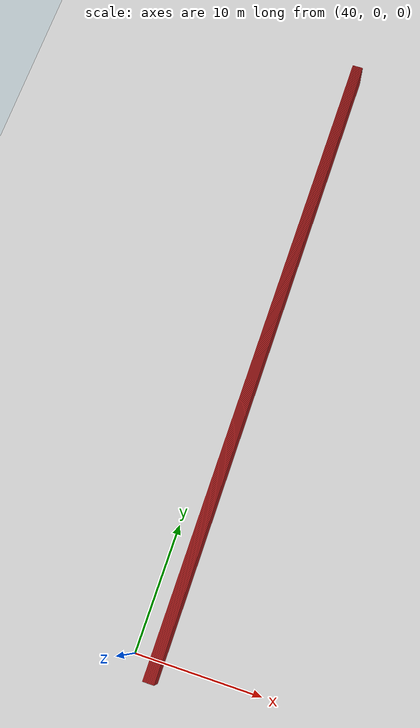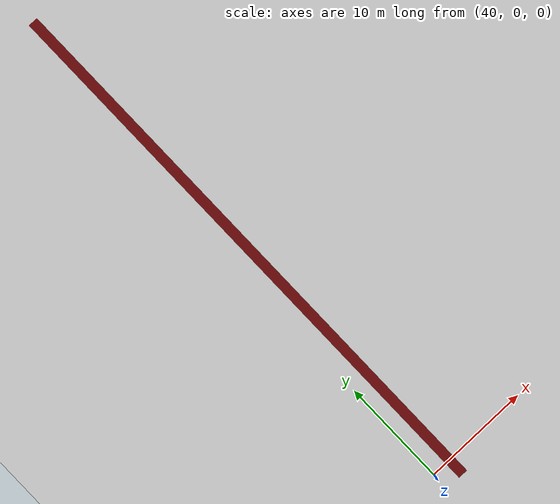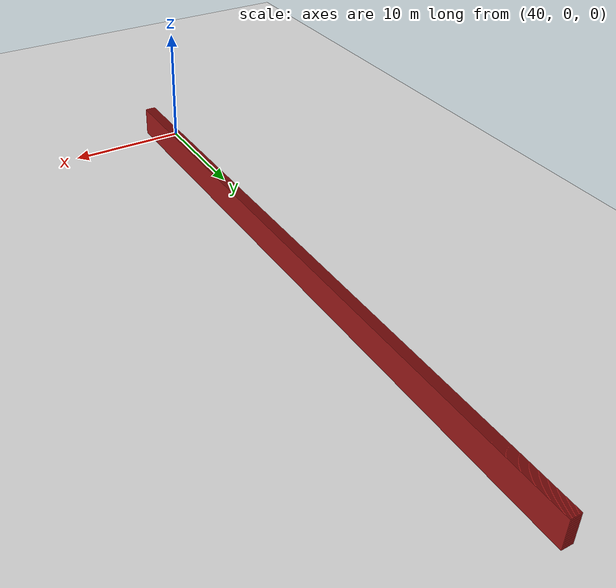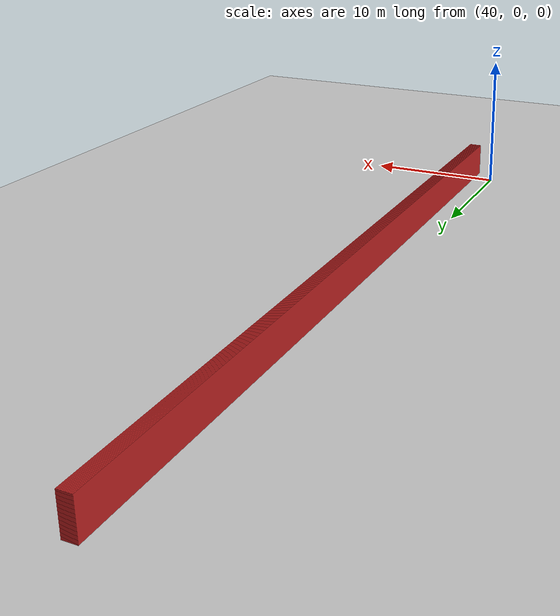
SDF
<sdf version="1.4">
 <world name="1_wall">
  <model name="ground_plane">
   <static>1</static>
   <link name="link">
    <collision name="collision">
     <geometry><plane><normal>0 0 1</normal><size>1000 1000</size></plane></geometry>
     <surface><friction><ode><mu>100</mu><mu2>50</mu2></ode></friction></surface>
    </collision>
    <visual name="visual">
     <cast_shadows>0</cast_shadows>
     <geometry><plane><normal>0 0 1</normal><size>10000 10000</size></plane></geometry>
     <material>
      <script><uri>file://media/materials/scripts/gazebo.material</uri><name>Gazebo/Grey</name></script>
     </material>
    </visual>
    <velocity_decay><linear>0</linear><angular>0</angular></velocity_decay>
   </link>
  </model>
  <model name="Wall_859">
   <static>1</static>
   <link name="Wall_859">
    <collision name="Wall_Collision_859">
     <geometry><box><size>53.65 0.05 2.5</size></box></geometry>
     <pose>0 0 1.25 0 -0 0</pose>
    </collision>
    <visual name="Wall_Visual_859">
     <pose>0 0 1.25 0 -0 0</pose>
     <geometry><box><size>53.65 0.05 2.5</size></box></geometry>
     <material>
      <script><uri>file://media/materials/scripts/gazebo.material</uri><name>Gazebo/Red</name></script>
     </material>
    </visual>
    <velocity_decay><linear>0</linear><angular>0</angular></velocity_decay>
    <pose>41.45 25.3 0 0 0 1.5707963267948966</pose>
   </link>
  </model>
  <model name="Wall_860">
   <static>1</static>
   <link name="Wall_860">
    <collision name="Wall_Collision_860">
     <geometry><box><size>53.65 0.05 2.5</size></box></geometry>
     <pose>0 0 1.25 0 -0 0</pose>
    </collision>
    <visual name="Wall_Visual_860">
     <pose>0 0 1.25 0 -0 0</pose>
     <geometry><box><size>53.65 0.05 2.5</size></box></geometry>
     <material>
      <script><uri>file://media/materials/scripts/gazebo.material</uri><name>Gazebo/Red</name></script>
     </material>
    </visual>
    <velocity_decay><linear>0</linear><angular>0</angular></velocity_decay>
    <pose>41.5 25.3 0 0 0 1.5707963267948966</pose>
   </link>
  </model>
  <model name="Wall_861">
   <static>1</static>
   <link name="Wall_861">
    <collision name="Wall_Collision_861">
     <geometry><box><size>53.65 0.05 2.5</size></box></geometry>
     <pose>0 0 1.25 0 -0 0</pose>
    </collision>
    <visual name="Wall_Visual_861">
     <pose>0 0 1.25 0 -0 0</pose>
     <geometry><box><size>53.65 0.05 2.5</size></box></geometry>
     <material>
      <script><uri>file://media/materials/scripts/gazebo.material</uri><name>Gazebo/Red</name></script>
     </material>
    </visual>
    <velocity_decay><linear>0</linear><angular>0</angular></velocity_decay>
    <pose>41.55 25.3 0 0 0 1.5707963267948966</pose>
   </link>
  </model>
  <model name="Wall_862">
   <static>1</static>
   <link name="Wall_862">
    <collision name="Wall_Collision_862">
     <geometry><box><size>53.65 0.05 2.5</size></box></geometry>
     <pose>0 0 1.25 0 -0 0</pose>
    </collision>
    <visual name="Wall_Visual_862">
     <pose>0 0 1.25 0 -0 0</pose>
     <geometry><box><size>53.65 0.05 2.5</size></box></geometry>
     <material>
      <script><uri>file://media/materials/scripts/gazebo.material</uri><name>Gazebo/Red</name></script>
     </material>
    </visual>
    <velocity_decay><linear>0</linear><angular>0</angular></velocity_decay>
    <pose>41.6 25.3 0 0 0 1.5707963267948966</pose>
   </link>
  </model>
  <model name="Wall_863">
   <static>1</static>
   <link name="Wall_863">
    <collision name="Wall_Collision_863">
     <geometry><box><size>53.65 0.05 2.5</size></box></geometry>
     <pose>0 0 1.25 0 -0 0</pose>
    </collision>
    <visual name="Wall_Visual_863">
     <pose>0 0 1.25 0 -0 0</pose>
     <geometry><box><size>53.65 0.05 2.5</size></box></geometry>
     <material>
      <script><uri>file://media/materials/scripts/gazebo.material</uri><name>Gazebo/Red</name></script>
     </material>
    </visual>
    <velocity_decay><linear>0</linear><angular>0</angular></velocity_decay>
    <pose>41.65 25.3 0 0 0 1.5707963267948966</pose>
   </link>
  </model>
  <model name="Wall_864">
   <static>1</static>
   <link name="Wall_864">
    <collision name="Wall_Collision_864">
     <geometry><box><size>53.65 0.05 2.5</size></box></geometry>
     <pose>0 0 1.25 0 -0 0</pose>
    </collision>
    <visual name="Wall_Visual_864">
     <pose>0 0 1.25 0 -0 0</pose>
     <geometry><box><size>53.65 0.05 2.5</size></box></geometry>
     <material>
      <script><uri>file://media/materials/scripts/gazebo.material</uri><name>Gazebo/Red</name></script>
     </material>
    </visual>
    <velocity_decay><linear>0</linear><angular>0</angular></velocity_decay>
    <pose>41.7 25.3 0 0 0 1.5707963267948966</pose>
   </link>
  </model>
  <model name="Wall_865">
   <static>1</static>
   <link name="Wall_865">
    <collision name="Wall_Collision_865">
     <geometry><box><size>53.65 0.05 2.5</size></box></geometry>
     <pose>0 0 1.25 0 -0 0</pose>
    </collision>
    <visual name="Wall_Visual_865">
     <pose>0 0 1.25 0 -0 0</pose>
     <geometry><box><size>53.65 0.05 2.5</size></box></geometry>
     <material>
      <script><uri>file://media/materials/scripts/gazebo.material</uri><name>Gazebo/Red</name></script>
     </material>
    </visual>
    <velocity_decay><linear>0</linear><angular>0</angular></velocity_decay>
    <pose>41.75 25.3 0 0 0 1.5707963267948966</pose>
   </link>
  </model>
  <model name="Wall_866">
   <static>1</static>
   <link name="Wall_866">
    <collision name="Wall_Collision_866">
     <geometry><box><size>53.65 0.05 2.5</size></box></geometry>
     <pose>0 0 1.25 0 -0 0</pose>
    </collision>
    <visual name="Wall_Visual_866">
     <pose>0 0 1.25 0 -0 0</pose>
     <geometry><box><size>53.65 0.05 2.5</size></box></geometry>
     <material>
      <script><uri>file://media/materials/scripts/gazebo.material</uri><name>Gazebo/Red</name></script>
     </material>
    </visual>
    <velocity_decay><linear>0</linear><angular>0</angular></velocity_decay>
    <pose>41.8 25.3 0 0 0 1.5707963267948966</pose>
   </link>
  </model>
  <model name="Wall_867">
   <static>1</static>
   <link name="Wall_867">
    <collision name="Wall_Collision_867">
     <geometry><box><size>53.65 0.05 2.5</size></box></geometry>
     <pose>0 0 1.25 0 -0 0</pose>
    </collision>
    <visual name="Wall_Visual_867">
     <pose>0 0 1.25 0 -0 0</pose>
     <geometry><box><size>53.65 0.05 2.5</size></box></geometry>
     <material>
      <script><uri>file://media/materials/scripts/gazebo.material</uri><name>Gazebo/Red</name></script>
     </material>
    </visual>
    <velocity_decay><linear>0</linear><angular>0</angular></velocity_decay>
    <pose>41.85 25.3 0 0 0 1.5707963267948966</pose>
   </link>
  </model>
  <model name="Wall_868">
   <static>1</static>
   <link name="Wall_868">
    <collision name="Wall_Collision_868">
     <geometry><box><size>53.65 0.05 2.5</size></box></geometry>
     <pose>0 0 1.25 0 -0 0</pose>
    </collision>
    <visual name="Wall_Visual_868">
     <pose>0 0 1.25 0 -0 0</pose>
     <geometry><box><size>53.65 0.05 2.5</size></box></geometry>
     <material>
      <script><uri>file://media/materials/scripts/gazebo.material</uri><name>Gazebo/Red</name></script>
     </material>
    </visual>
    <velocity_decay><linear>0</linear><angular>0</angular></velocity_decay>
    <pose>41.9 25.3 0 0 0 1.5707963267948966</pose>
   </link>
  </model>
  <model name="Wall_869">
   <static>1</static>
   <link name="Wall_869">
    <collision name="Wall_Collision_869">
     <geometry><box><size>53.65 0.05 2.5</size></box></geometry>
     <pose>0 0 1.25 0 -0 0</pose>
    </collision>
    <visual name="Wall_Visual_869">
     <pose>0 0 1.25 0 -0 0</pose>
     <geometry><box><size>53.65 0.05 2.5</size></box></geometry>
     <material>
      <script><uri>file://media/materials/scripts/gazebo.material</uri><name>Gazebo/Red</name></script>
     </material>
    </visual>
    <velocity_decay><linear>0</linear><angular>0</angular></velocity_decay>
    <pose>41.95 25.3 0 0 0 1.5707963267948966</pose>
   </link>
  </model>
  <model name="Wall_870">
   <static>1</static>
   <link name="Wall_870">
    <collision name="Wall_Collision_870">
     <geometry><box><size>53.65 0.05 2.5</size></box></geometry>
     <pose>0 0 1.25 0 -0 0</pose>
    </collision>
    <visual name="Wall_Visual_870">
     <pose>0 0 1.25 0 -0 0</pose>
     <geometry><box><size>53.65 0.05 2.5</size></box></geometry>
     <material>
      <script><uri>file://media/materials/scripts/gazebo.material</uri><name>Gazebo/Red</name></script>
     </material>
    </visual>
    <velocity_decay><linear>0</linear><angular>0</angular></velocity_decay>
    <pose>42.0 25.3 0 0 0 1.5707963267948966</pose>
   </link>
  </model>
  <model name="Wall_871">
   <static>1</static>
   <link name="Wall_871">
    <collision name="Wall_Collision_871">
     <geometry><box><size>53.65 0.05 2.5</size></box></geometry>
     <pose>0 0 1.25 0 -0 0</pose>
    </collision>
    <visual name="Wall_Visual_871">
     <pose>0 0 1.25 0 -0 0</pose>
     <geometry><box><size>53.65 0.05 2.5</size></box></geometry>
     <material>
      <script><uri>file://media/materials/scripts/gazebo.material</uri><name>Gazebo/Red</name></script>
     </material>
    </visual>
    <velocity_decay><linear>0</linear><angular>0</angular></velocity_decay>
    <pose>42.05 25.3 0 0 0 1.5707963267948966</pose>
   </link>
  </model>
  <model name="Wall_872">
   <static>1</static>
   <link name="Wall_872">
    <collision name="Wall_Collision_872">
     <geometry><box><size>53.65 0.05 2.5</size></box></geometry>
     <pose>0 0 1.25 0 -0 0</pose>
    </collision>
    <visual name="Wall_Visual_872">
     <pose>0 0 1.25 0 -0 0</pose>
     <geometry><box><size>53.65 0.05 2.5</size></box></geometry>
     <material>
      <script><uri>file://media/materials/scripts/gazebo.material</uri><name>Gazebo/Red</name></script>
     </material>
    </visual>
    <velocity_decay><linear>0</linear><angular>0</angular></velocity_decay>
    <pose>42.1 25.3 0 0 0 1.5707963267948966</pose>
   </link>
  </model>
  <model name="Wall_873">
   <static>1</static>
   <link name="Wall_873">
    <collision name="Wall_Collision_873">
     <geometry><box><size>53.65 0.05 2.5</size></box></geometry>
     <pose>0 0 1.25 0 -0 0</pose>
    </collision>
    <visual name="Wall_Visual_873">
     <pose>0 0 1.25 0 -0 0</pose>
     <geometry><box><size>53.65 0.05 2.5</size></box></geometry>
     <material>
      <script><uri>file://media/materials/scripts/gazebo.material</uri><name>Gazebo/Red</name></script>
     </material>
    </visual>
    <velocity_decay><linear>0</linear><angular>0</angular></velocity_decay>
    <pose>42.15 25.3 0 0 0 1.5707963267948966</pose>
   </link>
  </model>
  <model name="Wall_874">
   <static>1</static>
   <link name="Wall_874">
    <collision name="Wall_Collision_874">
     <geometry><box><size>53.65 0.05 2.5</size></box></geometry>
     <pose>0 0 1.25 0 -0 0</pose>
    </collision>
    <visual name="Wall_Visual_874">
     <pose>0 0 1.25 0 -0 0</pose>
     <geometry><box><size>53.65 0.05 2.5</size></box></geometry>
     <material>
      <script><uri>file://media/materials/scripts/gazebo.material</uri><name>Gazebo/Red</name></script>
     </material>
    </visual>
    <velocity_decay><linear>0</linear><angular>0</angular></velocity_decay>
    <pose>42.2 25.3 0 0 0 1.5707963267948966</pose>
   </link>
  </model>
  <model name="Wall_875">
   <static>1</static>
   <link name="Wall_875">
    <collision name="Wall_Collision_875">
     <geometry><box><size>53.65 0.05 2.5</size></box></geometry>
     <pose>0 0 1.25 0 -0 0</pose>
    </collision>
    <visual name="Wall_Visual_875">
     <pose>0 0 1.25 0 -0 0</pose>
     <geometry><box><size>53.65 0.05 2.5</size></box></geometry>
     <material>
      <script><uri>file://media/materials/scripts/gazebo.material</uri><name>Gazebo/Red</name></script>
     </material>
    </visual>
    <velocity_decay><linear>0</linear><angular>0</angular></velocity_decay>
    <pose>42.25 25.3 0 0 0 1.5707963267948966</pose>
   </link>
  </model>
  <model name="Wall_876">
   <static>1</static>
   <link name="Wall_876">
    <collision name="Wall_Collision_876">
     <geometry><box><size>53.65 0.05 2.5</size></box></geometry>
     <pose>0 0 1.25 0 -0 0</pose>
    </collision>
    <visual name="Wall_Visual_876">
     <pose>0 0 1.25 0 -0 0</pose>
     <geometry><box><size>53.65 0.05 2.5</size></box></geometry>
     <material>
      <script><uri>file://media/materials/scripts/gazebo.material</uri><name>Gazebo/Red</name></script>
     </material>
    </visual>
    <velocity_decay><linear>0</linear><angular>0</angular></velocity_decay>
    <pose>42.3 25.3 0 0 0 1.5707963267948966</pose>
   </link>
  </model>
 </world>
</sdf>
